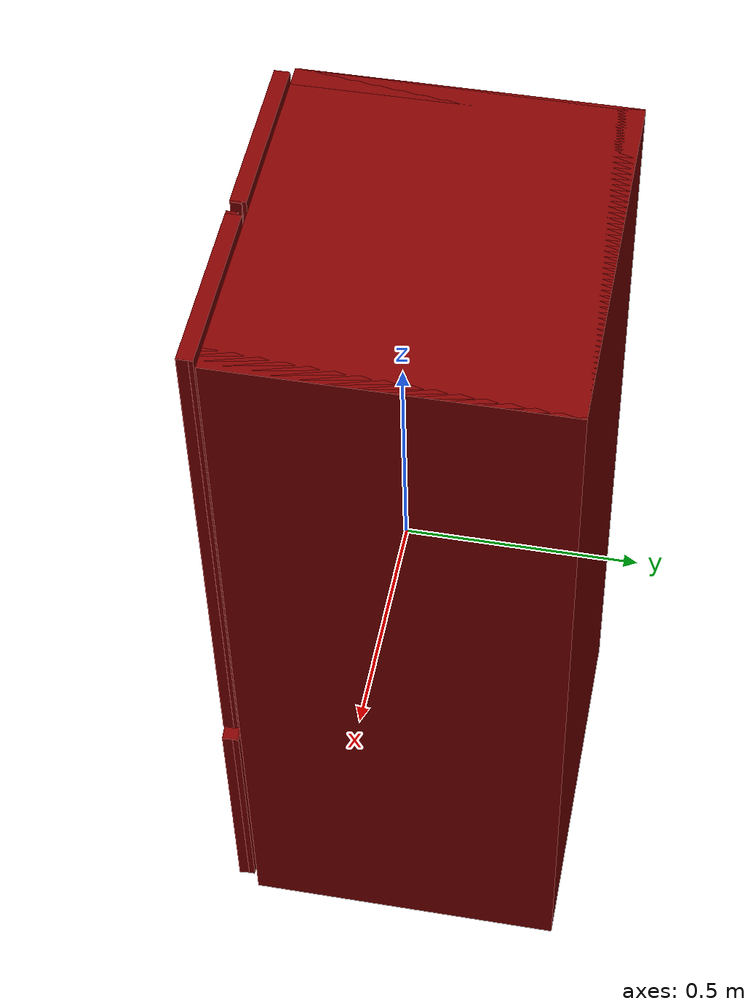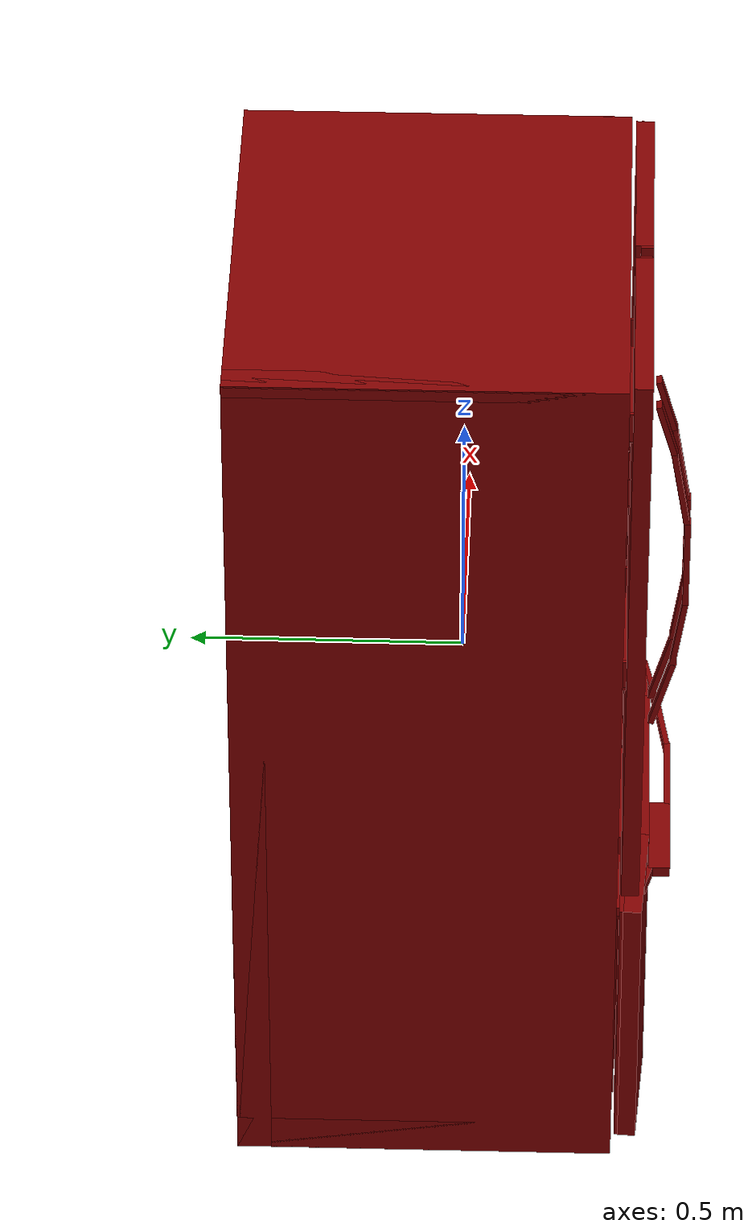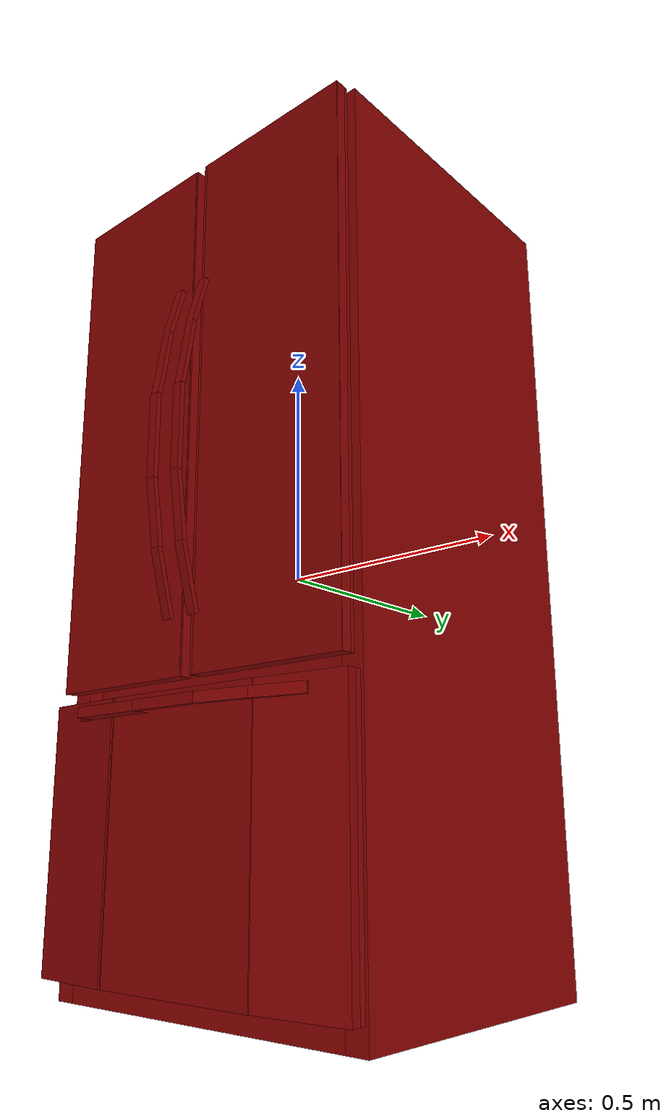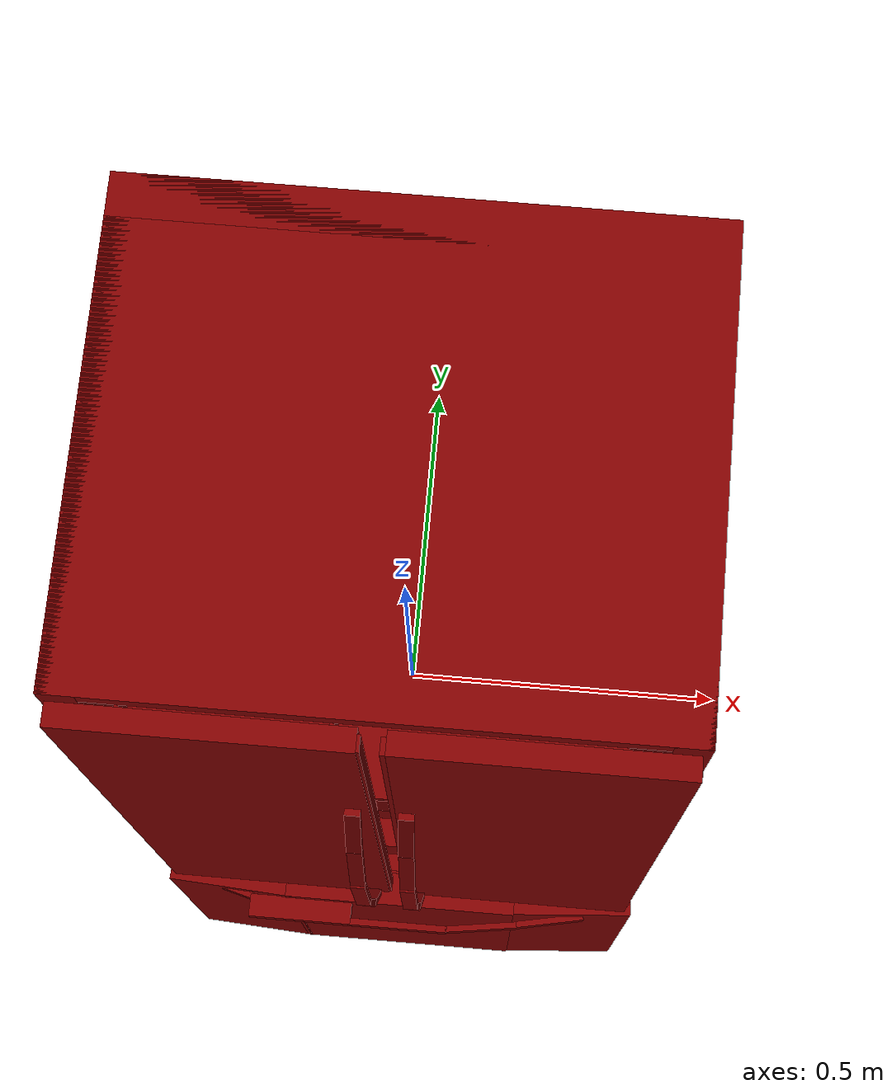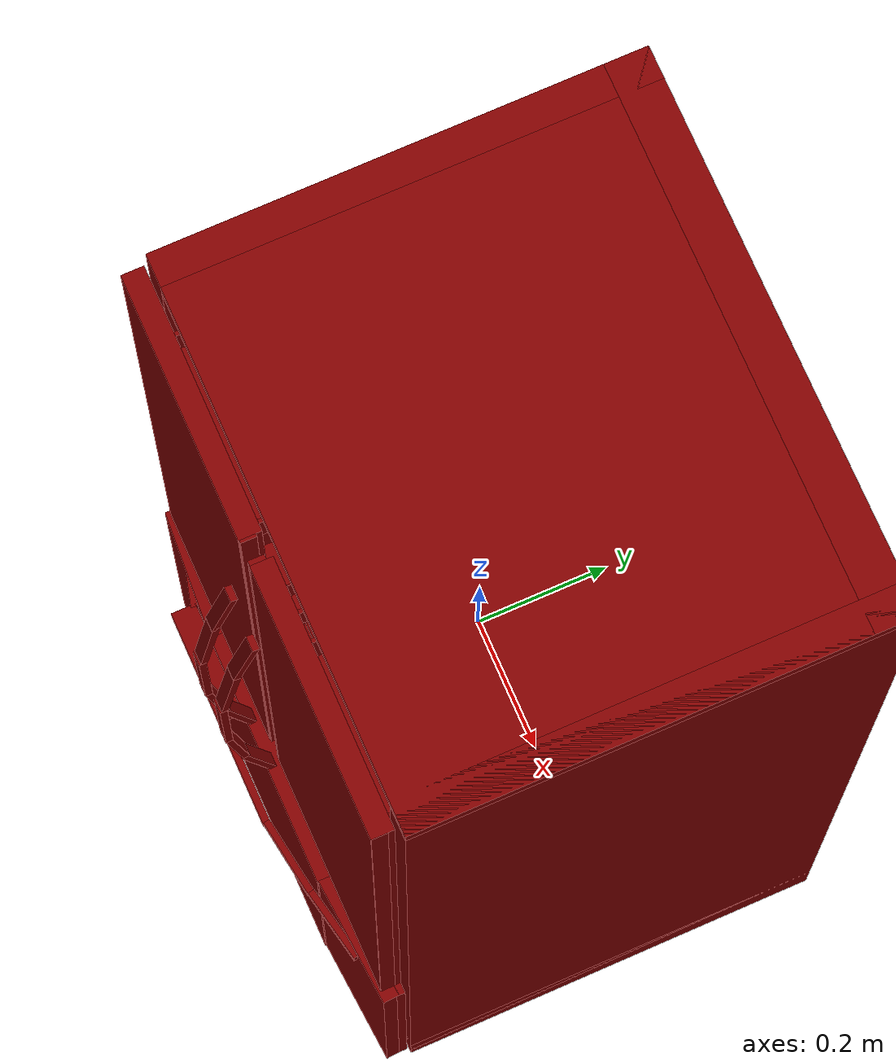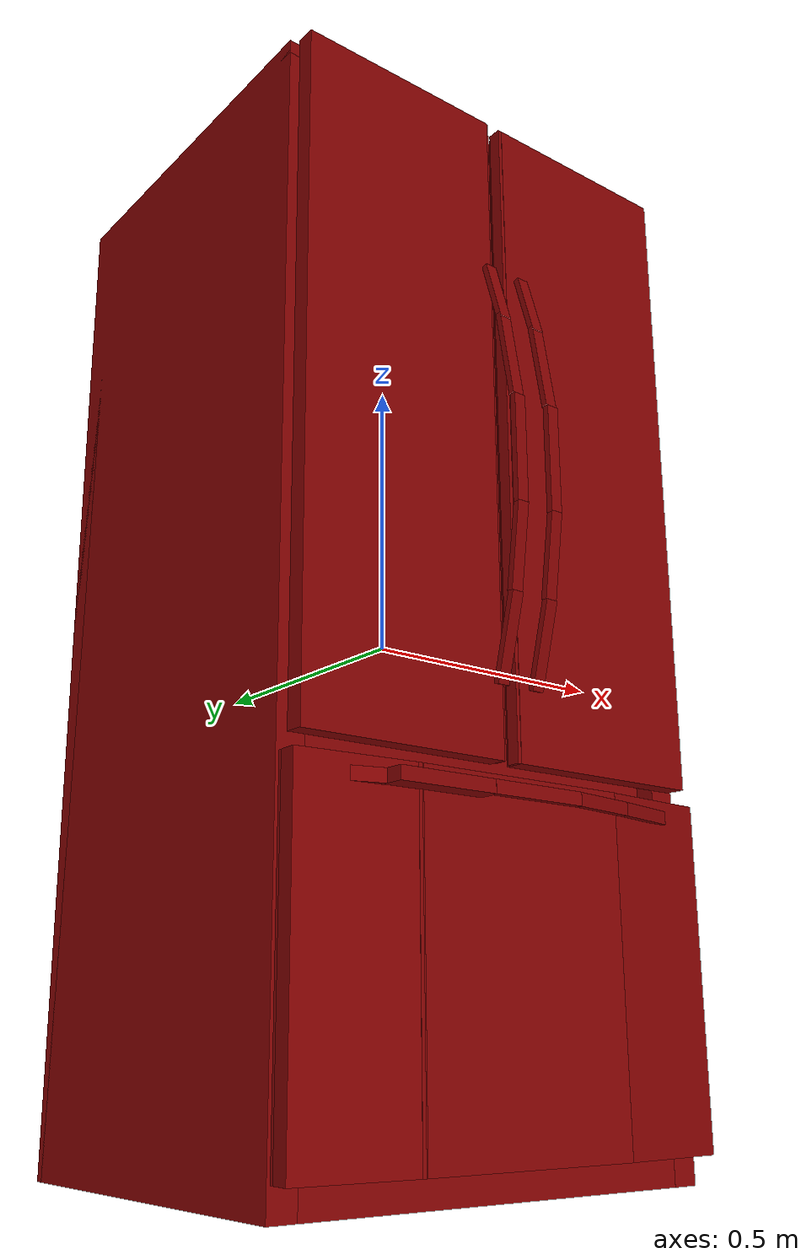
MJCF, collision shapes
<?xml version='1.0' encoding='UTF-8'?>
<mujoco model="model">
  <option timestep="0.002" gravity="0.0 0.0 -9.81"/>
  <compiler angle="radian"/>
  <asset>
    <mesh file="visuals/freezer0.obj" name="freezer0_vis"/>
    <mesh file="visuals/freezer1.obj" name="freezer1_vis"/>
    <mesh file="visuals/fridge_drawer0.obj" name="fridge_drawer0_vis"/>
    <mesh file="visuals/fridge_left_door.obj" name="fridge_left_door_vis"/>
    <mesh file="visuals/fridge_left_door_Clear.obj" name="fridge_left_door_Clear_vis"/>
    <mesh file="visuals/fridge_right_door.obj" name="fridge_right_door_vis"/>
    <mesh file="visuals/fridge_right_door_Clear.obj" name="fridge_right_door_Clear_vis"/>
    <mesh file="visuals/Body001.obj" name="Body001_vis"/>
    <mesh file="visuals/Body001_Clear.obj" name="Body001_Clear_vis"/>
    <texture file="visuals/T_BC001.png" name="Body001_material" type="2d"/>
    <material name="Body001_material" rgba="1 1 1 1.0" texture="Body001_material" shininess="0.141421377658844" specular="2"/>
    <texture file="visuals/T_BC001.png" name="freezer0_material" type="2d"/>
    <material name="freezer0_material" rgba="1 1 1 1.0" texture="freezer0_material" shininess="0.141421377658844" specular="2"/>
    <texture file="visuals/T_BC001.png" name="freezer1_material" type="2d"/>
    <material name="freezer1_material" rgba="1 1 1 1.0" texture="freezer1_material" shininess="0.141421377658844" specular="0.3103448502657381"/>
    <texture file="visuals/T_BC001.png" name="fridge_drawer0_material" type="2d"/>
    <material name="fridge_drawer0_material" rgba="1 1 1 1.0" texture="fridge_drawer0_material" shininess="0.141421377658844" specular="0.3103448502657381"/>
    <texture file="visuals/T_BC001.png" name="fridge_left_door_material" type="2d"/>
    <material name="fridge_left_door_material" rgba="1 1 1 1.0" texture="fridge_left_door_material" shininess="0.141421377658844" specular="2"/>
    <texture file="visuals/T_BC001.png" name="fridge_left_door_Clear_material" type="2d"/>
    <material name="fridge_left_door_Clear_material" rgba="1 1 1 0.7157635688781738" texture="fridge_left_door_Clear_material" shininess="0.5" specular="0.3103448502657381"/>
    <texture file="visuals/T_BC001.png" name="fridge_right_door_material" type="2d"/>
    <material name="fridge_right_door_material" rgba="1 1 1 1.0" texture="fridge_right_door_material" shininess="0.141421377658844" specular="2"/>
    <texture file="visuals/T_BC001.png" name="fridge_right_door_Clear_material" type="2d"/>
    <material name="fridge_right_door_Clear_material" rgba="1 1 1 0.7157635688781738" texture="fridge_right_door_Clear_material" shininess="0.5" specular="0.3103448502657381"/>
    <texture file="visuals/T_BC001.png" name="Body001_Clear_material" type="2d"/>
    <material name="Body001_Clear_material" rgba="1 1 1 0.7157635688781738" texture="Body001_Clear_material" shininess="0.5" specular="0.3103448502657381"/>
  </asset>
  <default>
    <default class="visual">
      <geom conaffinity="0" contype="0" group="1" type="mesh"/>
    </default>
    <default class="collision">
      <geom group="0" rgba="0.5 0 0 0.5"/>
    </default>
    <default class="spawn">
      <geom group="0" rgba="1 1 1 0.5" contype="0" conaffinity="0"/>
      <site group="0" rgba="1 1 1 0.5"/>
    </default>
    <default class="region">
      <geom group="1" conaffinity="0" contype="0" rgba="0 1 0 0"/>
    </default>
  </default>
  <worldbody>
    <body>
      <body name="object">
        <geom mesh="Body001_vis" type="mesh" solimp="0.998 0.998 0.001" solref="0.001 1" friction="0.95 0.3 0.1" class="visual" material="Body001_material"/>
        <geom class="collision" type="box" pos="-0.38450342 0.05988887 0.00000000" size="0.024028195068240166 0.3483005464076996 0.8931799530982971" quat="1.0 0.0 0.0 0.0"/>
        <geom class="collision" type="box" pos="0.38444024 0.05988887 0.00000000" size="0.024028195068240166 0.3483005464076996 0.8931799530982971" quat="1.0 0.0 0.0 0.0"/>
        <geom class="collision" type="box" pos="-0.00003153 0.05988889 0.88141704" size="0.40849995613098145 0.3483005464076996 0.011762959882616997" quat="1.0 0.0 0.0 0.0"/>
        <geom class="collision" type="box" pos="-0.00003153 0.05988889 -0.85641742" size="0.40849995613098145 0.3483005464076996 0.03676270693540573" quat="1.0 0.0 0.0 0.0"/>
        <geom class="collision" type="box" pos="-0.00003155 0.08495633 0.11819652" size="0.39680585265159607 0.3212831914424896 0.006698716897517443" quat="1.0 0.0 0.0 0.0"/>
        <geom class="collision" type="box" pos="-0.00003155 0.11663155 0.45432752" size="0.39680588245391846 0.2661714255809784 0.004725380335003138" quat="1.0 0.0 0.0 0.0"/>
        <geom class="collision" type="box" pos="-0.00003161 0.37645635 0.00000000" size="0.40849998593330383 0.03173329308629036 0.8931800127029419" quat="1.0 0.0 0.0 0.0"/>
        <geom class="collision" type="box" pos="0.00280960 0.04573580 0.86155820" size="0.3755094110965729 0.3187136948108673 0.017510509118437767" quat="1.0 0.0 0.0 0.0"/>
        <geom class="collision" type="box" pos="-0.00003155 0.07569154 -0.25702730" size="0.39680585265159607 0.33054792881011963 0.04112429544329643" quat="1.0 0.0 0.0 0.0"/>
        <geom class="collision" type="box" pos="0.34760708 0.10707539 0.41363895" size="0.0034027781803160906 0.23800313472747803 0.03809480741620064" quat="1.0 0.0 0.0 0.0"/>
        <geom class="collision" type="box" pos="0.34760708 0.10707539 0.07497077" size="0.0034027781803160906 0.23800313472747803 0.03809479624032974" quat="1.0 0.0 0.0 0.0"/>
        <geom class="collision" type="box" pos="0.01241402 0.10707539 0.44366425" size="0.0016766265034675598 0.23800313472747803 0.008069503121078014" quat="1.0 0.0 0.0 0.0"/>
        <geom class="collision" type="box" pos="0.01264940 0.10707539 0.10621612" size="0.0014412404270842671 0.23800313472747803 0.006849458906799555" quat="1.0 0.0 0.0 0.0"/>
        <geom class="collision" type="box" pos="-0.35052064 0.10707539 0.41363895" size="0.0034028056543320417 0.23800313472747803 0.03809480741620064" quat="1.0 0.0 0.0 0.0"/>
        <geom class="collision" type="box" pos="-0.35052064 0.10707539 0.07497077" size="0.0034028056543320417 0.23800313472747803 0.03809479624032974" quat="1.0 0.0 0.0 0.0"/>
        <geom class="collision" type="box" pos="-0.01197444 0.10707539 0.44366425" size="0.0017812424339354038 0.23800313472747803 0.008069503121078014" quat="1.0 0.0 0.0 0.0"/>
        <geom class="collision" type="box" pos="-0.01210089 0.10707539 0.10625244" size="0.0015138904564082623 0.23800313472747803 0.006813133601099253" quat="1.0 0.0 0.0 0.0"/>
        <body name="freezer0">
          <geom class="region" name="reg_freezer0" type="box" pos="0.001828910000000003 -0.050169105 -0.603983175" size="0.24643611999999998 0.163604785 0.133237955"/>
          <joint axis="0.0 -1.0 0.0" pos="-0.00000003 -0.06509862 -0.56588185" limited="true" name="freezer0_door_joint" range="0.0 0.4" type="slide" damping="1" frictionloss="1" armature=".01" stiffness="0.05"/>
          <geom mesh="freezer0_vis" type="mesh" solimp="0.998 0.998 0.001" solref="0.001 1" friction="0.95 0.3 0.1" class="visual" material="freezer0_material"/>
          <geom class="collision" type="box" pos="0.26763779 -0.34877837 -0.31483844" size="0.010972114279866219 0.00530815776437521 0.05985259637236595" quat="0.7036592364311218 -0.06974031776189804 0.703659176826477 0.06974031031131744" name="freezer0_door_handle_4"/>
          <geom class="collision" type="box" pos="0.14719012 -0.37028379 -0.31483835" size="0.010972114279866219 0.005308158230036497 0.06291089206933975" quat="0.7052419185638428 -0.0513228140771389 0.7052416205406189 0.05132279172539711" name="freezer0_door_handle_3"/>
          <geom class="collision" type="box" pos="-0.00071831 -0.37994215 -0.31483844" size="0.0878286138176918 0.005798651371151209 0.010972142219543457" quat="1.0 0.0 0.0 0.0" name="freezer0_door_handle_main"/>
          <geom class="collision" type="box" pos="-0.17487615 -0.36572227 -0.31483838" size="0.09022636711597443 0.0198851116001606 0.010972121730446815" quat="1.0 0.0 0.0 0.0" name="freezer0_door_handle_1"/>
          <geom class="collision" type="box" pos="-0.30808631 -0.33686140 -0.31483835" size="0.010972114279866219 0.005308159627020359 0.049236103892326355" quat="0.700890064239502 0.09355829656124115 0.7008900046348572 -0.09355829656124115" name="freezer0_door_handle_2"/>
          <geom class="collision" type="box" pos="0.00000000 -0.31895557 -0.56559443" size="0.2023966759443283 0.028420493006706238 0.278927743434906" quat="1.0 0.0 0.0 0.0" name="freezer0_door_main"/>
          <geom class="collision" type="box" pos="0.29362011 -0.32187468 -0.56559443" size="0.11402547359466553 0.016635680571198463 0.278927743434906" quat="0.9992759823799133 0.0 0.0 0.0380464568734169"/>
          <geom class="collision" type="box" pos="-0.30057046 -0.32408494 -0.56559443" size="0.10797232389450073 0.016593830659985542 0.278927743434906" quat="0.9994935989379883 0.0 0.0 -0.03182004764676094"/>
          <geom class="collision" type="box" pos="0.00000000 -0.30310822 -0.56559443" size="0.40690967440605164 0.00852268747985363 0.278927743434906" quat="1.0 0.0 0.0 0.0"/>
          <geom class="collision" type="box" pos="0.00199157 -0.26859540 -0.56559443" size="0.3540191054344177 0.02291768789291382 0.22295355796813965" quat="1.0 0.0 0.0 0.0"/>
          <geom class="collision" type="box" pos="0.32026699 -0.02154636 -0.46093792" size="0.025592977181077003 0.2772807776927948 0.10664799809455872" quat="1.0 0.0 0.0 0.0"/>
          <geom class="collision" type="box" pos="-0.31858596 -0.02154633 -0.46093792" size="0.025481753051280975 0.2772807776927948 0.1066477969288826" quat="1.0 0.0 0.0 0.0"/>
          <geom class="collision" type="box" pos="-0.27808726 -0.04230550 -0.66908526" size="0.025592967867851257 0.2340209186077118 0.1066417470574379" quat="1.0 0.0 0.0 0.0"/>
          <geom class="collision" type="box" pos="0.27932867 -0.04230551 -0.66908526" size="0.025592967867851257 0.2340209186077118 0.1066417470574379" quat="1.0 0.0 0.0 0.0"/>
          <geom class="collision" type="box" pos="0.00078485 0.22939002 -0.47800508" size="0.3002060651779175 0.025593047961592674 0.1124182716012001" quat="1.0 0.0 0.0 0.0"/>
          <geom class="collision" type="box" pos="0.00078485 0.16922778 -0.66331333" size="0.30021369457244873 0.01441675890237093 0.11797244846820831" quat="3.184155161761737e-07 -4.890158833426028e-10 0.16600175201892853 0.9861254692077637"/>
          <geom class="collision" type="box" pos="-0.00646261 -0.04321002 -0.75912565" size="0.2340068221092224 0.009364083409309387 0.2704109847545624" quat="0.5091145038604736 0.4907163977622986 -0.5091143846511841 -0.49071621894836426"/>
          <geom class="collision" type="box" pos="0.00199157 -0.28977090 -0.33751637" size="0.3540191054344177 0.009718894958496094 0.010038522072136402" quat="1.0 0.0 0.0 0.0"/>
          <body name="freezer1">
            <geom class="region" name="reg_freezer1" type="box" pos="-0.0030354299999999917 0.019260875000000004 -0.38960099000000004" size="0.21723025 0.093220355 0.05321179000000001"/>
            <joint axis="0.0 -1.0 0.0" pos="0.00093982 0.07326759 -0.39640731" limited="true" name="freezer1_door_joint" range="0.0 0.15" type="slide" damping="1" frictionloss="1" armature=".01" stiffness="0.05"/>
            <geom mesh="freezer1_vis" type="mesh" solimp="0.998 0.998 0.001" solref="0.001 1" friction="0.95 0.3 0.1" class="visual" material="freezer1_material"/>
            <geom class="collision" type="box" pos="0.00000000 -0.08844102 -0.38928840" size="0.28965258598327637 0.009032035246491432 0.06073815003037453" quat="1.0 0.0 0.0 0.0"/>
            <geom class="collision" type="box" pos="-0.26800793 0.05274396 -0.35319713" size="0.01740308105945587 0.1495235711336136 0.02314554527401924" quat="1.0 0.0 0.0 0.0"/>
            <geom class="collision" type="box" pos="0.27250695 0.05274394 -0.35319710" size="0.018279386684298515 0.14953012764453888 0.023145534098148346" quat="1.0 0.0 0.0 0.0"/>
            <geom class="collision" type="box" pos="0.00177008 0.19000724 -0.35983106" size="0.2761361002922058 0.01214724313467741 0.008748493157327175" quat="1.0 0.0 0.0 0.0"/>
            <geom class="collision" type="box" pos="0.00177010 0.02460408 -0.45670980" size="0.2761303782463074 0.12095644325017929 0.008748626336455345" quat="1.0 0.0 0.0 0.0"/>
            <geom class="collision" type="box" pos="0.00177010 0.15475695 -0.41111338" size="0.2761361002922058 0.01037431601434946 0.055372271686792374" quat="4.9690360270915335e-08 9.066028638926582e-08 -0.3120264708995819 -0.9500734210014343"/>
            <geom class="collision" type="box" pos="0.28281999 0.04770091 -0.41351300" size="0.010338072665035725 0.13220137357711792 0.037042196840047836" quat="1.0 0.0 0.0 0.0"/>
            <geom class="collision" type="box" pos="-0.27502230 0.04770093 -0.41351300" size="0.010338052175939083 0.13220137357711792 0.037042196840047836" quat="1.0 0.0 0.0 0.0"/>
            <geom class="collision" type="box" pos="0.23741524 0.01864199 -0.41082576" size="0.018278727307915688 0.04678211733698845 0.05228723585605621" quat="1.0 0.0 0.0 0.0"/>
            <geom class="collision" type="box" pos="-0.24370237 0.01864201 -0.41082576" size="0.018278727307915688 0.04678218811750412 0.05228734016418457" quat="1.0 0.0 0.0 0.0"/>
          </body>
        </body>
        <body name="fridge_drawer0">
          <geom class="region" name="reg_fridge_drawer0" type="box" pos="0.0015466799999999947 0.06486220499999999 -0.08380285999999999" size="0.33201042999999997 0.245455355 0.10618408"/>
          <joint axis="0.0 -1.0 0.0" pos="0.00057608 0.07391627 -0.08254771" limited="true" name="fridge_drawer0_joint" range="0.0 0.4" type="slide" damping="1" frictionloss="1" armature=".01" stiffness="0.05"/>
          <geom mesh="fridge_drawer0_vis" type="mesh" solimp="0.998 0.998 0.001" solref="0.001 1" friction="0.95 0.3 0.1" class="visual" material="fridge_drawer0_material"/>
          <geom class="collision" type="box" pos="0.00417992 0.32720434 -0.08735115" size="0.34223830699920654 0.0033921501599252224 0.11516373604536057" quat="1.0 0.0 0.0 0.0"/>
          <geom class="collision" type="box" pos="-0.34078509 0.06436861 -0.08735115" size="0.00408827792853117 0.2590886652469635 0.11516325175762177" quat="1.0 0.0 0.0 0.0"/>
          <geom class="collision" type="box" pos="0.34281877 0.06436861 -0.08735115" size="0.003744915360584855 0.25908783078193665 0.1151626855134964" quat="1.0 0.0 0.0 0.0"/>
          <geom class="collision" type="box" pos="0.00074365 0.06436862 -0.19905630" size="0.3422357439994812 0.2590869069099426 0.0032003687229007483" quat="1.0 0.0 0.0 0.0"/>
          <geom class="collision" type="box" pos="-0.00441690 -0.19691940 -0.08005732" size="0.07190626859664917 0.005427333060652018 0.033017951995134354" quat="0.9871617555618286 -0.15972371399402618 0.0 0.0"/>
          <geom class="collision" type="box" pos="-0.20951477 -0.19705873 -0.08042418" size="0.13319464027881622 0.010428411886096 0.12950772047042847" quat="1.0 0.0 0.0 0.0"/>
          <geom class="collision" type="box" pos="-0.00441688 -0.19705873 -0.16315597" size="0.071907639503479 0.010428362525999546 0.046560678631067276" quat="1.0 0.0 0.0 0.0"/>
          <geom class="collision" type="box" pos="-0.00441688 -0.19705873 0.00061419" size="0.07190749794244766 0.010428348556160927 0.048466961830854416" quat="1.0 0.0 0.0 0.0"/>
          <geom class="collision" type="box" pos="0.20746368 -0.19705873 -0.08042418" size="0.13997633755207062 0.010428356006741524 0.12950684130191803" quat="1.0 0.0 0.0 0.0"/>
          <geom class="collision" type="box" pos="-0.00441690 -0.18842145 -0.08137184" size="0.07190626859664917 0.0022927960380911827 0.03352512791752815" quat="1.0 0.0 0.0 0.0"/>
        </body>
        <body name="fridge_left_door">
          <joint axis="0.0 0.0 -1.0" pos="-0.39032593 -0.31050986 0.31572008" limited="true" name="fridge_left_door_joint" range="0.0 1.5707963267948966" type="hinge" damping="1" frictionloss="1" armature=".01" stiffness="0.05"/>
          <geom mesh="fridge_left_door_vis" type="mesh" solimp="0.998 0.998 0.001" solref="0.001 1" friction="0.95 0.3 0.1" class="visual" material="fridge_left_door_material"/>
          <geom class="collision" type="box" pos="-0.20637985 -0.31224564 0.31712261" size="0.18872188031673431 0.016137875616550446 0.5760568380355835" quat="1.0 0.0 0.0 0.0"/>
          <geom class="collision" type="box" pos="-0.20366684 -0.31589893 0.31712267" size="0.19027496874332428 0.011285308748483658 0.5760098695755005" quat="1.0 0.0 0.0 0.0" name="fridge_left_door_main"/>
          <geom class="collision" type="box" pos="-0.03614493 -0.36037204 0.53005654" size="0.010972114279866219 0.00530815776437521 0.05872257798910141" quat="0.9904153347015381 -0.1381213217973709 1.2564709722919205e-17 -1.772449942944432e-18" name="fridge_left_door_handle_3"/>
          <geom class="collision" type="box" pos="-0.03614493 -0.38725573 0.40276325" size="0.010972114279866219 0.005308158230036497 0.07956326752901077" quat="0.9966456294059753 -0.08183827251195908 2.5093064857916704e-17 6.775999914214151e-19" name="fridge_left_door_handle_2"/>
          <geom class="collision" type="box" pos="-0.03614493 -0.40255764 0.23054825" size="0.010973476804792881 0.00549537967890501 0.09319718182086945" quat="1.0 0.0 0.0 0.0" name="fridge_left_door_handle_main"/>
          <geom class="collision" type="box" pos="-0.03614493 -0.39271930 0.06824975" size="0.010972114279866219 0.00530815776437521 0.0722985789179802" quat="0.9974129796028137 0.0718841552734375 5.861155651600458e-17 7.300785421899178e-18" name="fridge_left_door_handle_1"/>
          <geom class="collision" type="box" pos="-0.03614493 -0.36539004 -0.07384010" size="0.010972114279866219 0.005308158230036497 0.07336056232452393" quat="0.9912081956863403 0.1323114037513733 7.150681919222855e-17 9.876869040489397e-18" name="fridge_left_door_handle_4"/>
          <geom class="collision" type="box" pos="-0.19549124 -0.26898021 0.73027170" size="0.13503436744213104 0.0441959947347641 0.0030021562706679106" quat="1.0 0.0 0.0 0.0"/>
          <geom class="collision" type="box" pos="-0.19324790 -0.31098116 0.76070285" size="0.1368005871772766 0.0019272464560344815 0.02927578054368496" quat="1.0 0.0 0.0 0.0"/>
          <geom class="collision" type="box" pos="-0.19324790 -0.22625354 0.76070297" size="0.1368005871772766 0.0019272464560344815 0.02927578054368496" quat="1.0 0.0 0.0 0.0"/>
          <geom class="collision" type="box" pos="-0.32863712 -0.26849470 0.76070285" size="0.0030596451833844185 0.04351615905761719 0.02927577868103981" quat="1.0 0.0 0.0 0.0"/>
          <geom class="collision" type="box" pos="-0.05767793 -0.26849467 0.76070285" size="0.0030596451833844185 0.043516214936971664 0.02927577868103981" quat="1.0 0.0 0.0 0.0"/>
          <geom class="collision" type="box" pos="-0.19438472 -0.26790276 0.17471561" size="0.13648226857185364 0.043583616614341736 0.0038079756777733564" quat="1.0 0.0 0.0 0.0"/>
          <geom class="collision" type="box" pos="-0.19438472 -0.30856356 0.20611835" size="0.13648226857185364 0.0019270856864750385 0.030200963839888573" quat="1.0 0.0 0.0 0.0"/>
          <geom class="collision" type="box" pos="-0.19438472 -0.22625357 0.20611835" size="0.13648226857185364 0.0019270892953500152 0.030200963839888573" quat="1.0 0.0 0.0 0.0"/>
          <geom class="collision" type="box" pos="-0.32741076 -0.26815078 0.20611832" size="0.003184851724654436 0.04317488893866539 0.030200978741049767" quat="1.0 0.0 0.0 0.0"/>
          <geom class="collision" type="box" pos="-0.06123645 -0.26815075 0.20611832" size="0.003184851724654436 0.04317488893866539 0.030200978741049767" quat="1.0 0.0 0.0 0.0"/>
          <geom class="collision" type="box" pos="-0.08177326 -0.26485837 0.42245758" size="0.03909480199217796 0.03988198563456535 0.0030021562706679106" quat="1.0 0.0 0.0 0.0"/>
          <geom class="collision" type="box" pos="-0.08112375 -0.30203823 0.45288891" size="0.0396076925098896 0.0023703526239842176 0.029278632253408432" quat="1.0 0.0 0.0 0.0"/>
          <geom class="collision" type="box" pos="-0.08112375 -0.22678608 0.45288891" size="0.0396076925098896 0.002370349131524563 0.029278559610247612" quat="1.0 0.0 0.0 0.0"/>
          <geom class="collision" type="box" pos="-0.12032281 -0.26426125 0.45288882" size="0.0008858577348291874 0.03904443234205246 0.029275765642523766" quat="1.0 0.0 0.0 0.0"/>
          <geom class="collision" type="box" pos="-0.04187235 -0.26426125 0.45288882" size="0.0008858577348291874 0.03904448822140694 0.029275765642523766" quat="1.0 0.0 0.0 0.0"/>
          <body name="fridge_left_door_Clear">
            <geom mesh="fridge_left_door_Clear_vis" type="mesh" solimp="0.998 0.998 0.001" solref="0.001 1" friction="0.95 0.3 0.1" class="visual" material="fridge_left_door_Clear_material"/>
            <geom class="collision" type="box" pos="-0.19549124 -0.26898021 0.73027170" size="0.13503436744213104 0.0441959947347641 0.0030021562706679106" quat="1.0 0.0 0.0 0.0"/>
            <geom class="collision" type="box" pos="-0.19324790 -0.31098116 0.76070285" size="0.1368005871772766 0.0019272464560344815 0.02927578054368496" quat="1.0 0.0 0.0 0.0"/>
            <geom class="collision" type="box" pos="-0.19324790 -0.22625354 0.76070297" size="0.1368005871772766 0.0019272464560344815 0.02927578054368496" quat="1.0 0.0 0.0 0.0"/>
            <geom class="collision" type="box" pos="-0.32863712 -0.26849470 0.76070285" size="0.0030596451833844185 0.04351615905761719 0.02927577868103981" quat="1.0 0.0 0.0 0.0"/>
            <geom class="collision" type="box" pos="-0.05767793 -0.26849467 0.76070285" size="0.0030596451833844185 0.043516214936971664 0.02927577868103981" quat="1.0 0.0 0.0 0.0"/>
            <geom class="collision" type="box" pos="-0.19438472 -0.26790276 0.17471561" size="0.13648226857185364 0.043583616614341736 0.0038079756777733564" quat="1.0 0.0 0.0 0.0"/>
            <geom class="collision" type="box" pos="-0.19438472 -0.30856356 0.20611835" size="0.13648226857185364 0.0019270856864750385 0.030200963839888573" quat="1.0 0.0 0.0 0.0"/>
            <geom class="collision" type="box" pos="-0.19438472 -0.22625357 0.20611835" size="0.13648226857185364 0.0019270892953500152 0.030200963839888573" quat="1.0 0.0 0.0 0.0"/>
            <geom class="collision" type="box" pos="-0.32741076 -0.26815078 0.20611832" size="0.003184851724654436 0.04317488893866539 0.030200978741049767" quat="1.0 0.0 0.0 0.0"/>
            <geom class="collision" type="box" pos="-0.06123645 -0.26815075 0.20611832" size="0.003184851724654436 0.04317488893866539 0.030200978741049767" quat="1.0 0.0 0.0 0.0"/>
            <geom class="collision" type="box" pos="-0.08177326 -0.26485837 0.42245758" size="0.03909480199217796 0.03988198563456535 0.0030021562706679106" quat="1.0 0.0 0.0 0.0"/>
            <geom class="collision" type="box" pos="-0.08112375 -0.30203823 0.45288891" size="0.0396076925098896 0.0023703526239842176 0.029278632253408432" quat="1.0 0.0 0.0 0.0"/>
            <geom class="collision" type="box" pos="-0.08112375 -0.22678608 0.45288891" size="0.0396076925098896 0.002370349131524563 0.029278559610247612" quat="1.0 0.0 0.0 0.0"/>
            <geom class="collision" type="box" pos="-0.12032281 -0.26426125 0.45288882" size="0.0008858577348291874 0.03904443234205246 0.029275765642523766" quat="1.0 0.0 0.0 0.0"/>
            <geom class="collision" type="box" pos="-0.04187235 -0.26426125 0.45288882" size="0.0008858577348291874 0.03904448822140694 0.029275765642523766" quat="1.0 0.0 0.0 0.0"/>
          </body>
        </body>
        <body name="fridge_right_door">
          <joint axis="0.0 0.0 1.0" pos="0.39094859 -0.31213120 0.31571996" limited="true" name="fridge_right_door_joint" range="0.0 1.5707963267948966" type="hinge" damping="1" frictionloss="1" armature=".01" stiffness="0.05"/>
          <geom mesh="fridge_right_door_vis" type="mesh" solimp="0.998 0.998 0.001" solref="0.001 1" friction="0.95 0.3 0.1" class="visual" material="fridge_right_door_material"/>
          <geom class="collision" type="box" pos="0.20615344 -0.31224567 0.31712264" size="0.18843480944633484 0.01614280603826046 0.5761316418647766" quat="1.0 0.0 0.0 0.0"/>
          <geom class="collision" type="box" pos="0.20297606 -0.31665218 0.31712270" size="0.19209252297878265 0.011337715201079845 0.5760567784309387" quat="1.0 0.0 0.0 0.0" name="fridge_right_door_main"/>
          <geom class="collision" type="box" pos="0.17539228 -0.27445445 0.42298576" size="0.13111671805381775 0.049408864229917526 0.004389532376080751" quat="1.0 0.0 0.0 0.0"/>
          <geom class="collision" type="box" pos="0.17539228 -0.32037512 0.46748024" size="0.13111671805381775 0.0030593445990234613 0.042802125215530396" quat="1.0 0.0 0.0 0.0"/>
          <geom class="collision" type="box" pos="0.17539228 -0.22738162 0.46748024" size="0.13111671805381775 0.0030593497212976217 0.042802177369594574" quat="1.0 0.0 0.0 0.0"/>
          <geom class="collision" type="box" pos="0.04759590 -0.27368364 0.46748024" size="0.0030594049021601677 0.0483303964138031 0.042804963886737823" quat="1.0 0.0 0.0 0.0"/>
          <geom class="collision" type="box" pos="0.30330610 -0.27368364 0.46748030" size="0.0030594090931117535 0.0483303964138031 0.042804963886737823" quat="1.0 0.0 0.0 0.0"/>
          <geom class="collision" type="box" pos="0.17539228 -0.27274388 0.17250025" size="0.13111671805381775 0.048427239060401917 0.004389532376080751" quat="1.0 0.0 0.0 0.0"/>
          <geom class="collision" type="box" pos="0.17539228 -0.31653700 0.20248750" size="0.13111671805381775 0.0030594500713050365 0.030219756066799164" quat="1.0 0.0 0.0 0.0"/>
          <geom class="collision" type="box" pos="0.17539228 -0.22738162 0.20248750" size="0.13111671805381775 0.0030594535637646914 0.030219756066799164" quat="1.0 0.0 0.0 0.0"/>
          <geom class="collision" type="box" pos="0.04759590 -0.27313757 0.20248750" size="0.003059644717723131 0.04778438061475754 0.030219756066799164" quat="1.0 0.0 0.0 0.0"/>
          <geom class="collision" type="box" pos="0.30886266 -0.27225241 0.20070769" size="0.0030594291165471077 0.04778120294213295 0.03153377026319504" quat="1.0 0.0 0.0 0.0"/>
          <geom class="collision" type="box" pos="0.17539228 -0.30983234 0.20248750" size="0.13111671805381775 0.003059464506804943 0.030219756066799164" quat="1.0 0.0 0.0 0.0"/>
          <geom class="collision" type="box" pos="0.03656312 -0.36037204 0.53005654" size="0.010972114279866219 0.00530815776437521 0.05872257798910141" quat="0.9904153347015381 -0.1381213217973709 1.2564709722919205e-17 -1.772449942944432e-18" name="fridge_right_door_handle_1"/>
          <geom class="collision" type="box" pos="0.03656312 -0.38725573 0.40276325" size="0.010972114279866219 0.005308158230036497 0.07956326752901077" quat="0.9966456294059753 -0.08183827251195908 2.5093064857916704e-17 6.775999914214151e-19" name="fridge_right_door_handle_2"/>
          <geom class="collision" type="box" pos="0.03656312 -0.39271930 0.06824975" size="0.010972114279866219 0.00530815776437521 0.0722985789179802" quat="0.9974129796028137 0.0718841552734375 5.861155651600458e-17 7.300785421899178e-18" name="fridge_right_door_handle_3"/>
          <geom class="collision" type="box" pos="0.03656312 -0.36539004 -0.07384010" size="0.010972114279866219 0.005308158230036497 0.07336056232452393" quat="0.9912081956863403 0.1323114037513733 7.150681919222855e-17 9.876869040489397e-18" name="fridge_right_door_handle_4"/>
          <geom class="collision" type="box" pos="0.03656312 -0.40255764 0.23054825" size="0.010972234420478344 0.00549537967890501 0.09319718182086945" quat="1.0 0.0 0.0 0.0" name="fridge_right_door_handle_main"/>
          <body name="fridge_right_door_Clear">
            <geom mesh="fridge_right_door_Clear_vis" type="mesh" solimp="0.998 0.998 0.001" solref="0.001 1" friction="0.95 0.3 0.1" class="visual" material="fridge_right_door_Clear_material"/>
            <geom class="collision" type="box" pos="0.17539228 -0.27445445 0.42298576" size="0.13111671805381775 0.049408864229917526 0.004389532376080751" quat="1.0 0.0 0.0 0.0"/>
            <geom class="collision" type="box" pos="0.17539228 -0.32037512 0.46748024" size="0.13111671805381775 0.0030593445990234613 0.042802125215530396" quat="1.0 0.0 0.0 0.0"/>
            <geom class="collision" type="box" pos="0.17539228 -0.22738162 0.46748024" size="0.13111671805381775 0.0030593497212976217 0.042802177369594574" quat="1.0 0.0 0.0 0.0"/>
            <geom class="collision" type="box" pos="0.04759590 -0.27368364 0.46748024" size="0.0030594049021601677 0.0483303964138031 0.042804963886737823" quat="1.0 0.0 0.0 0.0"/>
            <geom class="collision" type="box" pos="0.30330610 -0.27368364 0.46748030" size="0.0030594090931117535 0.0483303964138031 0.042804963886737823" quat="1.0 0.0 0.0 0.0"/>
            <geom class="collision" type="box" pos="0.17539228 -0.27274388 0.17250025" size="0.13111671805381775 0.048427239060401917 0.004389532376080751" quat="1.0 0.0 0.0 0.0"/>
            <geom class="collision" type="box" pos="0.17539228 -0.31653700 0.20248750" size="0.13111671805381775 0.0030594500713050365 0.030219756066799164" quat="1.0 0.0 0.0 0.0"/>
            <geom class="collision" type="box" pos="0.17539228 -0.22738162 0.20248750" size="0.13111671805381775 0.0030594535637646914 0.030219756066799164" quat="1.0 0.0 0.0 0.0"/>
            <geom class="collision" type="box" pos="0.04759590 -0.27313757 0.20248750" size="0.003059644717723131 0.04778438061475754 0.030219756066799164" quat="1.0 0.0 0.0 0.0"/>
            <geom class="collision" type="box" pos="0.30886266 -0.27225241 0.20070769" size="0.0030594291165471077 0.04778120294213295 0.03153377026319504" quat="1.0 0.0 0.0 0.0"/>
            <geom class="collision" type="box" pos="0.17539228 -0.30983234 0.20248750" size="0.13111671805381775 0.003059464506804943 0.030219756066799164" quat="1.0 0.0 0.0 0.0"/>
          </body>
        </body>
        <body name="Body001_Clear">
          <geom mesh="Body001_Clear_vis" type="mesh" solimp="0.998 0.998 0.001" solref="0.001 1" friction="0.95 0.3 0.1" class="visual" material="Body001_Clear_material"/>
        </body>
        <geom class="region" name="reg_fridge_shelf0" type="box" pos="-0.0012794000000000139 0.09669906000000002 0.280167775" size="0.33858891999999996 0.24234808000000002 0.149856325"/>
        <geom class="region" name="reg_fridge_shelf1" type="box" pos="0.006986629999999994 0.09669903999999999 0.643112735" size="0.34683576 0.24234807 0.177049095"/>
        <geom class="region" name="reg_main" type="box" pos="4.999999997368221e-09 0.029659180000000007 0.0" size="0.409531635 0.37773974 0.89417989"/>
      </body>
    </body>
  </worldbody>
  <actuator>
    <motor name="freezer0_door_joint_actuator" joint="freezer0_door_joint" gear="50"/>
    <motor name="fridge_drawer0_joint_actuator" joint="fridge_drawer0_joint" gear="50"/>
    <motor name="fridge_left_door_joint_actuator" joint="fridge_left_door_joint" gear="50"/>
    <motor name="fridge_right_door_joint_actuator" joint="fridge_right_door_joint" gear="50"/>
    <motor name="freezer1_door_joint_actuator" joint="freezer1_door_joint" gear="50"/>
  </actuator>
</mujoco>
